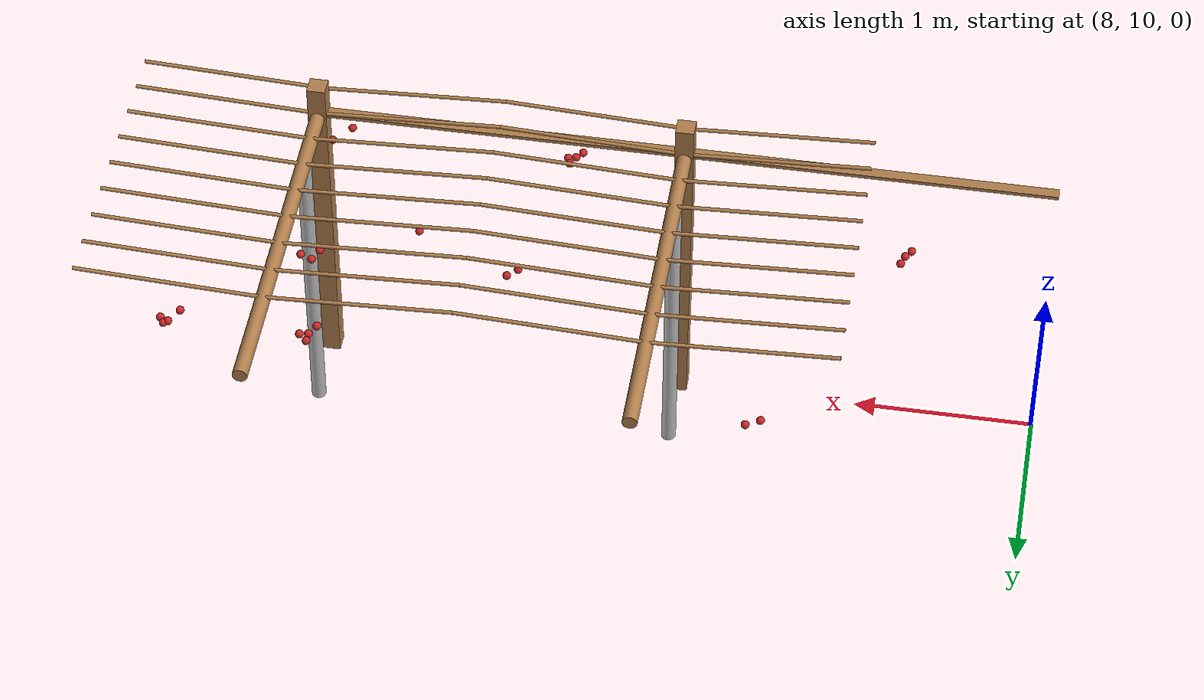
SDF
<sdf version="1.4">
 <model name="pergola">
  <include><name>post_60</name><pose>10.0 10.0 0 0 0 0</pose><uri>model://post</uri></include>
  <include><name>post_71</name><pose>12.0 10.0 0 0 0 0</pose><uri>model://post</uri></include>
  <link name="beam_49">
   <pose>9.0 10.0 1.81 0 0 0</pose>
   <collision name="collision"><geometry><box><size>2.0 0.06 0.02</size></box></geometry></collision>
   <visual name="visual">
    <geometry><box><size>2.0 0.06 0.02</size></box></geometry>
    <material><script><name>Gazebo/Wood</name></script></material>
   </visual>
   <inertial>
    <mass>5</mass>
    <inertia>
     <ixx>0.0016666666666666668</ixx>
     <ixy>0.0</ixy>
     <ixz>0.0</ixz>
     <iyy>1.6681666666666664</iyy>
     <iyz>0.0</iyz>
     <izz>1.6668333333333332</izz>
    </inertia>
   </inertial>
  </link>
  <link name="beam_60">
   <pose>11.0 10.0 1.81 0 0 0</pose>
   <collision name="collision"><geometry><box><size>2.0 0.06 0.02</size></box></geometry></collision>
   <visual name="visual">
    <geometry><box><size>2.0 0.06 0.02</size></box></geometry>
    <material><script><name>Gazebo/Wood</name></script></material>
   </visual>
   <inertial>
    <mass>5</mass>
    <inertia>
     <ixx>0.0016666666666666668</ixx>
     <ixy>0.0</ixy>
     <ixz>0.0</ixz>
     <iyy>1.6681666666666664</iyy>
     <iyz>0.0</iyz>
     <izz>1.6668333333333332</izz>
    </inertia>
   </inertial>
  </link>
  <include><name>tree_55</name><pose>10.0 10.4 0 0 0 0</pose><uri>model://tree_trunk</uri></include>
  <include><name>tree_65</name><pose>12.0 10.4 0 0 0 0</pose><uri>model://tree_trunk</uri></include>
  <link name="baseBranch_55">
   <pose>10.0 11.0 1.8 1.5707963267948966 0 0</pose>
   <collision name="collision">
    <geometry><cylinder><radius>0.04</radius><length>1.94</length></cylinder></geometry>
   </collision>
   <visual name="visual">
    <geometry><cylinder><radius>0.04</radius><length>1.94</length></cylinder></geometry>
    <material><script><name>Gazebo/WoodFloor</name></script></material>
   </visual>
   <inertial>
    <mass>10</mass>
    <inertia>
     <ixx>3.140333333333333</ixx>
     <ixy>0.0</ixy>
     <ixz>0.0</ixz>
     <iyy>3.140333333333333</iyy>
     <iyz>0.0</iyz>
     <izz>0.008</izz>
    </inertia>
   </inertial>
  </link>
  <link name="baseBranch_65">
   <pose>12.0 11.0 1.8 1.5707963267948966 0 0</pose>
   <collision name="collision">
    <geometry><cylinder><radius>0.04</radius><length>1.94</length></cylinder></geometry>
   </collision>
   <visual name="visual">
    <geometry><cylinder><radius>0.04</radius><length>1.94</length></cylinder></geometry>
    <material><script><name>Gazebo/WoodFloor</name></script></material>
   </visual>
   <inertial>
    <mass>10</mass>
    <inertia>
     <ixx>3.140333333333333</ixx>
     <ixy>0.0</ixy>
     <ixz>0.0</ixz>
     <iyy>3.140333333333333</iyy>
     <iyz>0.0</iyz>
     <izz>0.008</izz>
    </inertia>
   </inertial>
  </link>
  <link name="vine_899">
   <pose>9.5 9.83 1.85 0 -1.5208379310729538 0</pose>
   <collision name="collision">
    <geometry><cylinder><radius>0.01</radius><length>1.0012492197250393</length></cylinder></geometry>
   </collision>
   <visual name="visual">
    <geometry><cylinder><radius>0.01</radius><length>1.0012492197250393</length></cylinder></geometry>
    <material><script><name>Gazebo/WoodFloor</name></script></material>
   </visual>
   <inertial>
    <mass>5</mass>
    <inertia>
     <ixx>0.41783333333333345</ixx>
     <ixy>0.0</ixy>
     <ixz>0.0</ixz>
     <iyy>0.41783333333333345</iyy>
     <iyz>0.0</iyz>
     <izz>0.00025</izz>
    </inertia>
   </inertial>
  </link>
  <link name="vine_901">
   <pose>9.5 10.03 1.85 0 -1.5208379310729538 0</pose>
   <collision name="collision">
    <geometry><cylinder><radius>0.01</radius><length>1.0012492197250393</length></cylinder></geometry>
   </collision>
   <visual name="visual">
    <geometry><cylinder><radius>0.01</radius><length>1.0012492197250393</length></cylinder></geometry>
    <material><script><name>Gazebo/WoodFloor</name></script></material>
   </visual>
   <inertial>
    <mass>5</mass>
    <inertia>
     <ixx>0.41783333333333345</ixx>
     <ixy>0.0</ixy>
     <ixz>0.0</ixz>
     <iyy>0.41783333333333345</iyy>
     <iyz>0.0</iyz>
     <izz>0.00025</izz>
    </inertia>
   </inertial>
  </link>
  <link name="vine_903">
   <pose>9.5 10.23 1.85 0 -1.5208379310729538 0</pose>
   <collision name="collision">
    <geometry><cylinder><radius>0.01</radius><length>1.0012492197250393</length></cylinder></geometry>
   </collision>
   <visual name="visual">
    <geometry><cylinder><radius>0.01</radius><length>1.0012492197250393</length></cylinder></geometry>
    <material><script><name>Gazebo/WoodFloor</name></script></material>
   </visual>
   <inertial>
    <mass>5</mass>
    <inertia>
     <ixx>0.41783333333333345</ixx>
     <ixy>0.0</ixy>
     <ixz>0.0</ixz>
     <iyy>0.41783333333333345</iyy>
     <iyz>0.0</iyz>
     <izz>0.00025</izz>
    </inertia>
   </inertial>
  </link>
  <link name="vine_905">
   <pose>9.5 10.43 1.85 0 -1.5208379310729538 0</pose>
   <collision name="collision">
    <geometry><cylinder><radius>0.01</radius><length>1.0012492197250393</length></cylinder></geometry>
   </collision>
   <visual name="visual">
    <geometry><cylinder><radius>0.01</radius><length>1.0012492197250393</length></cylinder></geometry>
    <material><script><name>Gazebo/WoodFloor</name></script></material>
   </visual>
   <inertial>
    <mass>5</mass>
    <inertia>
     <ixx>0.41783333333333345</ixx>
     <ixy>0.0</ixy>
     <ixz>0.0</ixz>
     <iyy>0.41783333333333345</iyy>
     <iyz>0.0</iyz>
     <izz>0.00025</izz>
    </inertia>
   </inertial>
  </link>
  <link name="vine_907">
   <pose>9.5 10.63 1.85 0 -1.5208379310729538 0</pose>
   <collision name="collision">
    <geometry><cylinder><radius>0.01</radius><length>1.0012492197250393</length></cylinder></geometry>
   </collision>
   <visual name="visual">
    <geometry><cylinder><radius>0.01</radius><length>1.0012492197250393</length></cylinder></geometry>
    <material><script><name>Gazebo/WoodFloor</name></script></material>
   </visual>
   <inertial>
    <mass>5</mass>
    <inertia>
     <ixx>0.41783333333333345</ixx>
     <ixy>0.0</ixy>
     <ixz>0.0</ixz>
     <iyy>0.41783333333333345</iyy>
     <iyz>0.0</iyz>
     <izz>0.00025</izz>
    </inertia>
   </inertial>
  </link>
  <link name="vine_909">
   <pose>9.5 10.83 1.85 0 -1.5208379310729538 0</pose>
   <collision name="collision">
    <geometry><cylinder><radius>0.01</radius><length>1.0012492197250393</length></cylinder></geometry>
   </collision>
   <visual name="visual">
    <geometry><cylinder><radius>0.01</radius><length>1.0012492197250393</length></cylinder></geometry>
    <material><script><name>Gazebo/WoodFloor</name></script></material>
   </visual>
   <inertial>
    <mass>5</mass>
    <inertia>
     <ixx>0.41783333333333345</ixx>
     <ixy>0.0</ixy>
     <ixz>0.0</ixz>
     <iyy>0.41783333333333345</iyy>
     <iyz>0.0</iyz>
     <izz>0.00025</izz>
    </inertia>
   </inertial>
  </link>
  <link name="vine_911">
   <pose>9.5 11.03 1.85 0 -1.5208379310729538 0</pose>
   <collision name="collision">
    <geometry><cylinder><radius>0.01</radius><length>1.0012492197250393</length></cylinder></geometry>
   </collision>
   <visual name="visual">
    <geometry><cylinder><radius>0.01</radius><length>1.0012492197250393</length></cylinder></geometry>
    <material><script><name>Gazebo/WoodFloor</name></script></material>
   </visual>
   <inertial>
    <mass>5</mass>
    <inertia>
     <ixx>0.41783333333333345</ixx>
     <ixy>0.0</ixy>
     <ixz>0.0</ixz>
     <iyy>0.41783333333333345</iyy>
     <iyz>0.0</iyz>
     <izz>0.00025</izz>
    </inertia>
   </inertial>
  </link>
  <link name="vine_913">
   <pose>9.5 11.23 1.85 0 -1.5208379310729538 0</pose>
   <collision name="collision">
    <geometry><cylinder><radius>0.01</radius><length>1.0012492197250393</length></cylinder></geometry>
   </collision>
   <visual name="visual">
    <geometry><cylinder><radius>0.01</radius><length>1.0012492197250393</length></cylinder></geometry>
    <material><script><name>Gazebo/WoodFloor</name></script></material>
   </visual>
   <inertial>
    <mass>5</mass>
    <inertia>
     <ixx>0.41783333333333345</ixx>
     <ixy>0.0</ixy>
     <ixz>0.0</ixz>
     <iyy>0.41783333333333345</iyy>
     <iyz>0.0</iyz>
     <izz>0.00025</izz>
    </inertia>
   </inertial>
  </link>
  <link name="vine_915">
   <pose>9.5 11.43 1.85 0 -1.5208379310729538 0</pose>
   <collision name="collision">
    <geometry><cylinder><radius>0.01</radius><length>1.0012492197250393</length></cylinder></geometry>
   </collision>
   <visual name="visual">
    <geometry><cylinder><radius>0.01</radius><length>1.0012492197250393</length></cylinder></geometry>
    <material><script><name>Gazebo/WoodFloor</name></script></material>
   </visual>
   <inertial>
    <mass>5</mass>
    <inertia>
     <ixx>0.41783333333333345</ixx>
     <ixy>0.0</ixy>
     <ixz>0.0</ixz>
     <iyy>0.41783333333333345</iyy>
     <iyz>0.0</iyz>
     <izz>0.00025</izz>
    </inertia>
   </inertial>
  </link>
  <link name="vine_1098">
   <pose>10.5 9.83 1.85 0 1.5208379310729538 0</pose>
   <collision name="collision">
    <geometry><cylinder><radius>0.01</radius><length>1.0012492197250393</length></cylinder></geometry>
   </collision>
   <visual name="visual">
    <geometry><cylinder><radius>0.01</radius><length>1.0012492197250393</length></cylinder></geometry>
    <material><script><name>Gazebo/WoodFloor</name></script></material>
   </visual>
   <inertial>
    <mass>5</mass>
    <inertia>
     <ixx>0.41783333333333345</ixx>
     <ixy>0.0</ixy>
     <ixz>0.0</ixz>
     <iyy>0.41783333333333345</iyy>
     <iyz>0.0</iyz>
     <izz>0.00025</izz>
    </inertia>
   </inertial>
  </link>
  <link name="vine_1099">
   <pose>11.5 9.83 1.85 0 -1.5208379310729538 0</pose>
   <collision name="collision">
    <geometry><cylinder><radius>0.01</radius><length>1.0012492197250393</length></cylinder></geometry>
   </collision>
   <visual name="visual">
    <geometry><cylinder><radius>0.01</radius><length>1.0012492197250393</length></cylinder></geometry>
    <material><script><name>Gazebo/WoodFloor</name></script></material>
   </visual>
   <inertial>
    <mass>5</mass>
    <inertia>
     <ixx>0.41783333333333345</ixx>
     <ixy>0.0</ixy>
     <ixz>0.0</ixz>
     <iyy>0.41783333333333345</iyy>
     <iyz>0.0</iyz>
     <izz>0.00025</izz>
    </inertia>
   </inertial>
  </link>
  <link name="vine_1100">
   <pose>10.5 10.03 1.85 0 1.5208379310729538 0</pose>
   <collision name="collision">
    <geometry><cylinder><radius>0.01</radius><length>1.0012492197250393</length></cylinder></geometry>
   </collision>
   <visual name="visual">
    <geometry><cylinder><radius>0.01</radius><length>1.0012492197250393</length></cylinder></geometry>
    <material><script><name>Gazebo/WoodFloor</name></script></material>
   </visual>
   <inertial>
    <mass>5</mass>
    <inertia>
     <ixx>0.41783333333333345</ixx>
     <ixy>0.0</ixy>
     <ixz>0.0</ixz>
     <iyy>0.41783333333333345</iyy>
     <iyz>0.0</iyz>
     <izz>0.00025</izz>
    </inertia>
   </inertial>
  </link>
  <link name="vine_1101">
   <pose>11.5 10.03 1.85 0 -1.5208379310729538 0</pose>
   <collision name="collision">
    <geometry><cylinder><radius>0.01</radius><length>1.0012492197250393</length></cylinder></geometry>
   </collision>
   <visual name="visual">
    <geometry><cylinder><radius>0.01</radius><length>1.0012492197250393</length></cylinder></geometry>
    <material><script><name>Gazebo/WoodFloor</name></script></material>
   </visual>
   <inertial>
    <mass>5</mass>
    <inertia>
     <ixx>0.41783333333333345</ixx>
     <ixy>0.0</ixy>
     <ixz>0.0</ixz>
     <iyy>0.41783333333333345</iyy>
     <iyz>0.0</iyz>
     <izz>0.00025</izz>
    </inertia>
   </inertial>
  </link>
  <link name="vine_1102">
   <pose>10.5 10.23 1.85 0 1.5208379310729538 0</pose>
   <collision name="collision">
    <geometry><cylinder><radius>0.01</radius><length>1.0012492197250393</length></cylinder></geometry>
   </collision>
   <visual name="visual">
    <geometry><cylinder><radius>0.01</radius><length>1.0012492197250393</length></cylinder></geometry>
    <material><script><name>Gazebo/WoodFloor</name></script></material>
   </visual>
   <inertial>
    <mass>5</mass>
    <inertia>
     <ixx>0.41783333333333345</ixx>
     <ixy>0.0</ixy>
     <ixz>0.0</ixz>
     <iyy>0.41783333333333345</iyy>
     <iyz>0.0</iyz>
     <izz>0.00025</izz>
    </inertia>
   </inertial>
  </link>
  <link name="vine_1103">
   <pose>11.5 10.23 1.85 0 -1.5208379310729538 0</pose>
   <collision name="collision">
    <geometry><cylinder><radius>0.01</radius><length>1.0012492197250393</length></cylinder></geometry>
   </collision>
   <visual name="visual">
    <geometry><cylinder><radius>0.01</radius><length>1.0012492197250393</length></cylinder></geometry>
    <material><script><name>Gazebo/WoodFloor</name></script></material>
   </visual>
   <inertial>
    <mass>5</mass>
    <inertia>
     <ixx>0.41783333333333345</ixx>
     <ixy>0.0</ixy>
     <ixz>0.0</ixz>
     <iyy>0.41783333333333345</iyy>
     <iyz>0.0</iyz>
     <izz>0.00025</izz>
    </inertia>
   </inertial>
  </link>
  <link name="vine_1104">
   <pose>10.5 10.43 1.85 0 1.5208379310729538 0</pose>
   <collision name="collision">
    <geometry><cylinder><radius>0.01</radius><length>1.0012492197250393</length></cylinder></geometry>
   </collision>
   <visual name="visual">
    <geometry><cylinder><radius>0.01</radius><length>1.0012492197250393</length></cylinder></geometry>
    <material><script><name>Gazebo/WoodFloor</name></script></material>
   </visual>
   <inertial>
    <mass>5</mass>
    <inertia>
     <ixx>0.41783333333333345</ixx>
     <ixy>0.0</ixy>
     <ixz>0.0</ixz>
     <iyy>0.41783333333333345</iyy>
     <iyz>0.0</iyz>
     <izz>0.00025</izz>
    </inertia>
   </inertial>
  </link>
  <link name="vine_1105">
   <pose>11.5 10.43 1.85 0 -1.5208379310729538 0</pose>
   <collision name="collision">
    <geometry><cylinder><radius>0.01</radius><length>1.0012492197250393</length></cylinder></geometry>
   </collision>
   <visual name="visual">
    <geometry><cylinder><radius>0.01</radius><length>1.0012492197250393</length></cylinder></geometry>
    <material><script><name>Gazebo/WoodFloor</name></script></material>
   </visual>
   <inertial>
    <mass>5</mass>
    <inertia>
     <ixx>0.41783333333333345</ixx>
     <ixy>0.0</ixy>
     <ixz>0.0</ixz>
     <iyy>0.41783333333333345</iyy>
     <iyz>0.0</iyz>
     <izz>0.00025</izz>
    </inertia>
   </inertial>
  </link>
  <link name="vine_1106">
   <pose>10.5 10.63 1.85 0 1.5208379310729538 0</pose>
   <collision name="collision">
    <geometry><cylinder><radius>0.01</radius><length>1.0012492197250393</length></cylinder></geometry>
   </collision>
   <visual name="visual">
    <geometry><cylinder><radius>0.01</radius><length>1.0012492197250393</length></cylinder></geometry>
    <material><script><name>Gazebo/WoodFloor</name></script></material>
   </visual>
   <inertial>
    <mass>5</mass>
    <inertia>
     <ixx>0.41783333333333345</ixx>
     <ixy>0.0</ixy>
     <ixz>0.0</ixz>
     <iyy>0.41783333333333345</iyy>
     <iyz>0.0</iyz>
     <izz>0.00025</izz>
    </inertia>
   </inertial>
  </link>
  <link name="vine_1107">
   <pose>11.5 10.63 1.85 0 -1.5208379310729538 0</pose>
   <collision name="collision">
    <geometry><cylinder><radius>0.01</radius><length>1.0012492197250393</length></cylinder></geometry>
   </collision>
   <visual name="visual">
    <geometry><cylinder><radius>0.01</radius><length>1.0012492197250393</length></cylinder></geometry>
    <material><script><name>Gazebo/WoodFloor</name></script></material>
   </visual>
   <inertial>
    <mass>5</mass>
    <inertia>
     <ixx>0.41783333333333345</ixx>
     <ixy>0.0</ixy>
     <ixz>0.0</ixz>
     <iyy>0.41783333333333345</iyy>
     <iyz>0.0</iyz>
     <izz>0.00025</izz>
    </inertia>
   </inertial>
  </link>
  <link name="vine_1108">
   <pose>10.5 10.83 1.85 0 1.5208379310729538 0</pose>
   <collision name="collision">
    <geometry><cylinder><radius>0.01</radius><length>1.0012492197250393</length></cylinder></geometry>
   </collision>
   <visual name="visual">
    <geometry><cylinder><radius>0.01</radius><length>1.0012492197250393</length></cylinder></geometry>
    <material><script><name>Gazebo/WoodFloor</name></script></material>
   </visual>
   <inertial>
    <mass>5</mass>
    <inertia>
     <ixx>0.41783333333333345</ixx>
     <ixy>0.0</ixy>
     <ixz>0.0</ixz>
     <iyy>0.41783333333333345</iyy>
     <iyz>0.0</iyz>
     <izz>0.00025</izz>
    </inertia>
   </inertial>
  </link>
  <link name="vine_1109">
   <pose>11.5 10.83 1.85 0 -1.5208379310729538 0</pose>
   <collision name="collision">
    <geometry><cylinder><radius>0.01</radius><length>1.0012492197250393</length></cylinder></geometry>
   </collision>
   <visual name="visual">
    <geometry><cylinder><radius>0.01</radius><length>1.0012492197250393</length></cylinder></geometry>
    <material><script><name>Gazebo/WoodFloor</name></script></material>
   </visual>
   <inertial>
    <mass>5</mass>
    <inertia>
     <ixx>0.41783333333333345</ixx>
     <ixy>0.0</ixy>
     <ixz>0.0</ixz>
     <iyy>0.41783333333333345</iyy>
     <iyz>0.0</iyz>
     <izz>0.00025</izz>
    </inertia>
   </inertial>
  </link>
  <link name="vine_1110">
   <pose>10.5 11.03 1.85 0 1.5208379310729538 0</pose>
   <collision name="collision">
    <geometry><cylinder><radius>0.01</radius><length>1.0012492197250393</length></cylinder></geometry>
   </collision>
   <visual name="visual">
    <geometry><cylinder><radius>0.01</radius><length>1.0012492197250393</length></cylinder></geometry>
    <material><script><name>Gazebo/WoodFloor</name></script></material>
   </visual>
   <inertial>
    <mass>5</mass>
    <inertia>
     <ixx>0.41783333333333345</ixx>
     <ixy>0.0</ixy>
     <ixz>0.0</ixz>
     <iyy>0.41783333333333345</iyy>
     <iyz>0.0</iyz>
     <izz>0.00025</izz>
    </inertia>
   </inertial>
  </link>
  <link name="vine_1111">
   <pose>11.5 11.03 1.85 0 -1.5208379310729538 0</pose>
   <collision name="collision">
    <geometry><cylinder><radius>0.01</radius><length>1.0012492197250393</length></cylinder></geometry>
   </collision>
   <visual name="visual">
    <geometry><cylinder><radius>0.01</radius><length>1.0012492197250393</length></cylinder></geometry>
    <material><script><name>Gazebo/WoodFloor</name></script></material>
   </visual>
   <inertial>
    <mass>5</mass>
    <inertia>
     <ixx>0.41783333333333345</ixx>
     <ixy>0.0</ixy>
     <ixz>0.0</ixz>
     <iyy>0.41783333333333345</iyy>
     <iyz>0.0</iyz>
     <izz>0.00025</izz>
    </inertia>
   </inertial>
  </link>
  <link name="vine_1112">
   <pose>10.5 11.23 1.85 0 1.5208379310729538 0</pose>
   <collision name="collision">
    <geometry><cylinder><radius>0.01</radius><length>1.0012492197250393</length></cylinder></geometry>
   </collision>
   <visual name="visual">
    <geometry><cylinder><radius>0.01</radius><length>1.0012492197250393</length></cylinder></geometry>
    <material><script><name>Gazebo/WoodFloor</name></script></material>
   </visual>
   <inertial>
    <mass>5</mass>
    <inertia>
     <ixx>0.41783333333333345</ixx>
     <ixy>0.0</ixy>
     <ixz>0.0</ixz>
     <iyy>0.41783333333333345</iyy>
     <iyz>0.0</iyz>
     <izz>0.00025</izz>
    </inertia>
   </inertial>
  </link>
  <link name="vine_1113">
   <pose>11.5 11.23 1.85 0 -1.5208379310729538 0</pose>
   <collision name="collision">
    <geometry><cylinder><radius>0.01</radius><length>1.0012492197250393</length></cylinder></geometry>
   </collision>
   <visual name="visual">
    <geometry><cylinder><radius>0.01</radius><length>1.0012492197250393</length></cylinder></geometry>
    <material><script><name>Gazebo/WoodFloor</name></script></material>
   </visual>
   <inertial>
    <mass>5</mass>
    <inertia>
     <ixx>0.41783333333333345</ixx>
     <ixy>0.0</ixy>
     <ixz>0.0</ixz>
     <iyy>0.41783333333333345</iyy>
     <iyz>0.0</iyz>
     <izz>0.00025</izz>
    </inertia>
   </inertial>
  </link>
  <link name="vine_1114">
   <pose>10.5 11.43 1.85 0 1.5208379310729538 0</pose>
   <collision name="collision">
    <geometry><cylinder><radius>0.01</radius><length>1.0012492197250393</length></cylinder></geometry>
   </collision>
   <visual name="visual">
    <geometry><cylinder><radius>0.01</radius><length>1.0012492197250393</length></cylinder></geometry>
    <material><script><name>Gazebo/WoodFloor</name></script></material>
   </visual>
   <inertial>
    <mass>5</mass>
    <inertia>
     <ixx>0.41783333333333345</ixx>
     <ixy>0.0</ixy>
     <ixz>0.0</ixz>
     <iyy>0.41783333333333345</iyy>
     <iyz>0.0</iyz>
     <izz>0.00025</izz>
    </inertia>
   </inertial>
  </link>
  <link name="vine_1115">
   <pose>11.5 11.43 1.85 0 -1.5208379310729538 0</pose>
   <collision name="collision">
    <geometry><cylinder><radius>0.01</radius><length>1.0012492197250393</length></cylinder></geometry>
   </collision>
   <visual name="visual">
    <geometry><cylinder><radius>0.01</radius><length>1.0012492197250393</length></cylinder></geometry>
    <material><script><name>Gazebo/WoodFloor</name></script></material>
   </visual>
   <inertial>
    <mass>5</mass>
    <inertia>
     <ixx>0.41783333333333345</ixx>
     <ixy>0.0</ixy>
     <ixz>0.0</ixz>
     <iyy>0.41783333333333345</iyy>
     <iyz>0.0</iyz>
     <izz>0.00025</izz>
    </inertia>
   </inertial>
  </link>
  <link name="vine_1298">
   <pose>12.5 9.83 1.85 0 1.5208379310729538 0</pose>
   <collision name="collision">
    <geometry><cylinder><radius>0.01</radius><length>1.0012492197250393</length></cylinder></geometry>
   </collision>
   <visual name="visual">
    <geometry><cylinder><radius>0.01</radius><length>1.0012492197250393</length></cylinder></geometry>
    <material><script><name>Gazebo/WoodFloor</name></script></material>
   </visual>
   <inertial>
    <mass>5</mass>
    <inertia>
     <ixx>0.41783333333333345</ixx>
     <ixy>0.0</ixy>
     <ixz>0.0</ixz>
     <iyy>0.41783333333333345</iyy>
     <iyz>0.0</iyz>
     <izz>0.00025</izz>
    </inertia>
   </inertial>
  </link>
  <link name="vine_1300">
   <pose>12.5 10.03 1.85 0 1.5208379310729538 0</pose>
   <collision name="collision">
    <geometry><cylinder><radius>0.01</radius><length>1.0012492197250393</length></cylinder></geometry>
   </collision>
   <visual name="visual">
    <geometry><cylinder><radius>0.01</radius><length>1.0012492197250393</length></cylinder></geometry>
    <material><script><name>Gazebo/WoodFloor</name></script></material>
   </visual>
   <inertial>
    <mass>5</mass>
    <inertia>
     <ixx>0.41783333333333345</ixx>
     <ixy>0.0</ixy>
     <ixz>0.0</ixz>
     <iyy>0.41783333333333345</iyy>
     <iyz>0.0</iyz>
     <izz>0.00025</izz>
    </inertia>
   </inertial>
  </link>
  <link name="vine_1302">
   <pose>12.5 10.23 1.85 0 1.5208379310729538 0</pose>
   <collision name="collision">
    <geometry><cylinder><radius>0.01</radius><length>1.0012492197250393</length></cylinder></geometry>
   </collision>
   <visual name="visual">
    <geometry><cylinder><radius>0.01</radius><length>1.0012492197250393</length></cylinder></geometry>
    <material><script><name>Gazebo/WoodFloor</name></script></material>
   </visual>
   <inertial>
    <mass>5</mass>
    <inertia>
     <ixx>0.41783333333333345</ixx>
     <ixy>0.0</ixy>
     <ixz>0.0</ixz>
     <iyy>0.41783333333333345</iyy>
     <iyz>0.0</iyz>
     <izz>0.00025</izz>
    </inertia>
   </inertial>
  </link>
  <link name="vine_1304">
   <pose>12.5 10.43 1.85 0 1.5208379310729538 0</pose>
   <collision name="collision">
    <geometry><cylinder><radius>0.01</radius><length>1.0012492197250393</length></cylinder></geometry>
   </collision>
   <visual name="visual">
    <geometry><cylinder><radius>0.01</radius><length>1.0012492197250393</length></cylinder></geometry>
    <material><script><name>Gazebo/WoodFloor</name></script></material>
   </visual>
   <inertial>
    <mass>5</mass>
    <inertia>
     <ixx>0.41783333333333345</ixx>
     <ixy>0.0</ixy>
     <ixz>0.0</ixz>
     <iyy>0.41783333333333345</iyy>
     <iyz>0.0</iyz>
     <izz>0.00025</izz>
    </inertia>
   </inertial>
  </link>
  <link name="vine_1306">
   <pose>12.5 10.63 1.85 0 1.5208379310729538 0</pose>
   <collision name="collision">
    <geometry><cylinder><radius>0.01</radius><length>1.0012492197250393</length></cylinder></geometry>
   </collision>
   <visual name="visual">
    <geometry><cylinder><radius>0.01</radius><length>1.0012492197250393</length></cylinder></geometry>
    <material><script><name>Gazebo/WoodFloor</name></script></material>
   </visual>
   <inertial>
    <mass>5</mass>
    <inertia>
     <ixx>0.41783333333333345</ixx>
     <ixy>0.0</ixy>
     <ixz>0.0</ixz>
     <iyy>0.41783333333333345</iyy>
     <iyz>0.0</iyz>
     <izz>0.00025</izz>
    </inertia>
   </inertial>
  </link>
  <link name="vine_1308">
   <pose>12.5 10.83 1.85 0 1.5208379310729538 0</pose>
   <collision name="collision">
    <geometry><cylinder><radius>0.01</radius><length>1.0012492197250393</length></cylinder></geometry>
   </collision>
   <visual name="visual">
    <geometry><cylinder><radius>0.01</radius><length>1.0012492197250393</length></cylinder></geometry>
    <material><script><name>Gazebo/WoodFloor</name></script></material>
   </visual>
   <inertial>
    <mass>5</mass>
    <inertia>
     <ixx>0.41783333333333345</ixx>
     <ixy>0.0</ixy>
     <ixz>0.0</ixz>
     <iyy>0.41783333333333345</iyy>
     <iyz>0.0</iyz>
     <izz>0.00025</izz>
    </inertia>
   </inertial>
  </link>
  <link name="vine_1310">
   <pose>12.5 11.03 1.85 0 1.5208379310729538 0</pose>
   <collision name="collision">
    <geometry><cylinder><radius>0.01</radius><length>1.0012492197250393</length></cylinder></geometry>
   </collision>
   <visual name="visual">
    <geometry><cylinder><radius>0.01</radius><length>1.0012492197250393</length></cylinder></geometry>
    <material><script><name>Gazebo/WoodFloor</name></script></material>
   </visual>
   <inertial>
    <mass>5</mass>
    <inertia>
     <ixx>0.41783333333333345</ixx>
     <ixy>0.0</ixy>
     <ixz>0.0</ixz>
     <iyy>0.41783333333333345</iyy>
     <iyz>0.0</iyz>
     <izz>0.00025</izz>
    </inertia>
   </inertial>
  </link>
  <link name="vine_1312">
   <pose>12.5 11.23 1.85 0 1.5208379310729538 0</pose>
   <collision name="collision">
    <geometry><cylinder><radius>0.01</radius><length>1.0012492197250393</length></cylinder></geometry>
   </collision>
   <visual name="visual">
    <geometry><cylinder><radius>0.01</radius><length>1.0012492197250393</length></cylinder></geometry>
    <material><script><name>Gazebo/WoodFloor</name></script></material>
   </visual>
   <inertial>
    <mass>5</mass>
    <inertia>
     <ixx>0.41783333333333345</ixx>
     <ixy>0.0</ixy>
     <ixz>0.0</ixz>
     <iyy>0.41783333333333345</iyy>
     <iyz>0.0</iyz>
     <izz>0.00025</izz>
    </inertia>
   </inertial>
  </link>
  <link name="vine_1314">
   <pose>12.5 11.43 1.85 0 1.5208379310729538 0</pose>
   <collision name="collision">
    <geometry><cylinder><radius>0.01</radius><length>1.0012492197250393</length></cylinder></geometry>
   </collision>
   <visual name="visual">
    <geometry><cylinder><radius>0.01</radius><length>1.0012492197250393</length></cylinder></geometry>
    <material><script><name>Gazebo/WoodFloor</name></script></material>
   </visual>
   <inertial>
    <mass>5</mass>
    <inertia>
     <ixx>0.41783333333333345</ixx>
     <ixy>0.0</ixy>
     <ixz>0.0</ixz>
     <iyy>0.41783333333333345</iyy>
     <iyz>0.0</iyz>
     <izz>0.00025</izz>
    </inertia>
   </inertial>
  </link>
  <link name="fruit_10">
   <pose>8.729142464583658 10.500229779411352 1.7630535226261344 0 0 0</pose>
   <collision name="fruit_collision_10"><geometry><sphere><radius>0.022</radius></sphere></geometry></collision>
   <visual name="visual">
    <geometry><sphere><radius>0.022</radius></sphere></geometry>
    <material><script><name>Gazebo/Red</name></script></material>
   </visual>
   <inertial>
    <mass>0.05</mass>
    <inertia>
     <ixx>9.679999999999999e-06</ixx>
     <ixy>0.0</ixy>
     <ixz>0.0</ixz>
     <iyy>9.679999999999999e-06</iyy>
     <iyz>0.0</iyz>
     <izz>9.679999999999999e-06</izz>
    </inertia>
   </inertial>
   <sensor name="fruit_contact_10" type="contact">
    <contact><collision>fruit_collision_10</collision></contact>
   </sensor>
  </link>
  <link name="fruit_24">
   <pose>10.753553525217365 10.89398294198726 1.6928819000971629 0 0 0</pose>
   <collision name="fruit_collision_24"><geometry><sphere><radius>0.022</radius></sphere></geometry></collision>
   <visual name="visual">
    <geometry><sphere><radius>0.022</radius></sphere></geometry>
    <material><script><name>Gazebo/Red</name></script></material>
   </visual>
   <inertial>
    <mass>0.05</mass>
    <inertia>
     <ixx>9.679999999999999e-06</ixx>
     <ixy>0.0</ixy>
     <ixz>0.0</ixz>
     <iyy>9.679999999999999e-06</iyy>
     <iyz>0.0</iyz>
     <izz>9.679999999999999e-06</izz>
    </inertia>
   </inertial>
   <sensor name="fruit_contact_24" type="contact">
    <contact><collision>fruit_collision_24</collision></contact>
   </sensor>
  </link>
  <link name="fruit_75">
   <pose>12.419571371573035 11.512841064319536 1.741533312486118 0 0 0</pose>
   <collision name="fruit_collision_75"><geometry><sphere><radius>0.022</radius></sphere></geometry></collision>
   <visual name="visual">
    <geometry><sphere><radius>0.022</radius></sphere></geometry>
    <material><script><name>Gazebo/Red</name></script></material>
   </visual>
   <inertial>
    <mass>0.05</mass>
    <inertia>
     <ixx>9.679999999999999e-06</ixx>
     <ixy>0.0</ixy>
     <ixz>0.0</ixz>
     <iyy>9.679999999999999e-06</iyy>
     <iyz>0.0</iyz>
     <izz>9.679999999999999e-06</izz>
    </inertia>
   </inertial>
   <sensor name="fruit_contact_75" type="contact">
    <contact><collision>fruit_collision_75</collision></contact>
   </sensor>
  </link>
  <link name="fruit_127">
   <pose>10.569449435386023 9.89202783084765 1.6180405892810377 0 0 0</pose>
   <collision name="fruit_collision_127"><geometry><sphere><radius>0.022</radius></sphere></geometry></collision>
   <visual name="visual">
    <geometry><sphere><radius>0.022</radius></sphere></geometry>
    <material><script><name>Gazebo/Red</name></script></material>
   </visual>
   <inertial>
    <mass>0.05</mass>
    <inertia>
     <ixx>9.679999999999999e-06</ixx>
     <ixy>0.0</ixy>
     <ixz>0.0</ixz>
     <iyy>9.679999999999999e-06</iyy>
     <iyz>0.0</iyz>
     <izz>9.679999999999999e-06</izz>
    </inertia>
   </inertial>
   <sensor name="fruit_contact_127" type="contact">
    <contact><collision>fruit_collision_127</collision></contact>
   </sensor>
  </link>
  <link name="fruit_199">
   <pose>11.826108738499142 9.965334144803345 1.6808626080578146 0 0 0</pose>
   <collision name="fruit_collision_199"><geometry><sphere><radius>0.022</radius></sphere></geometry></collision>
   <visual name="visual">
    <geometry><sphere><radius>0.022</radius></sphere></geometry>
    <material><script><name>Gazebo/Red</name></script></material>
   </visual>
   <inertial>
    <mass>0.05</mass>
    <inertia>
     <ixx>9.679999999999999e-06</ixx>
     <ixy>0.0</ixy>
     <ixz>0.0</ixz>
     <iyy>9.679999999999999e-06</iyy>
     <iyz>0.0</iyz>
     <izz>9.679999999999999e-06</izz>
    </inertia>
   </inertial>
   <sensor name="fruit_contact_199" type="contact">
    <contact><collision>fruit_collision_199</collision></contact>
   </sensor>
  </link>
  <link name="fruit_240">
   <pose>11.837372824080777 10.808025306506792 1.576483519939332 0 0 0</pose>
   <collision name="fruit_collision_240"><geometry><sphere><radius>0.022</radius></sphere></geometry></collision>
   <visual name="visual">
    <geometry><sphere><radius>0.022</radius></sphere></geometry>
    <material><script><name>Gazebo/Red</name></script></material>
   </visual>
   <inertial>
    <mass>0.05</mass>
    <inertia>
     <ixx>9.679999999999999e-06</ixx>
     <ixy>0.0</ixy>
     <ixz>0.0</ixz>
     <iyy>9.679999999999999e-06</iyy>
     <iyz>0.0</iyz>
     <izz>9.679999999999999e-06</izz>
    </inertia>
   </inertial>
   <sensor name="fruit_contact_240" type="contact">
    <contact><collision>fruit_collision_240</collision></contact>
   </sensor>
  </link>
  <link name="fruit_248">
   <pose>11.713897375709372 11.449624775068907 1.6771194578121205 0 0 0</pose>
   <collision name="fruit_collision_248"><geometry><sphere><radius>0.022</radius></sphere></geometry></collision>
   <visual name="visual">
    <geometry><sphere><radius>0.022</radius></sphere></geometry>
    <material><script><name>Gazebo/Red</name></script></material>
   </visual>
   <inertial>
    <mass>0.05</mass>
    <inertia>
     <ixx>9.679999999999999e-06</ixx>
     <ixy>0.0</ixy>
     <ixz>0.0</ixz>
     <iyy>9.679999999999999e-06</iyy>
     <iyz>0.0</iyz>
     <izz>9.679999999999999e-06</izz>
    </inertia>
   </inertial>
   <sensor name="fruit_contact_248" type="contact">
    <contact><collision>fruit_collision_248</collision></contact>
   </sensor>
  </link>
  <link name="fruit_269">
   <pose>9.376746052955136 11.598429337234618 1.526169664233079 0 0 0</pose>
   <collision name="fruit_collision_269"><geometry><sphere><radius>0.022</radius></sphere></geometry></collision>
   <visual name="visual">
    <geometry><sphere><radius>0.022</radius></sphere></geometry>
    <material><script><name>Gazebo/Red</name></script></material>
   </visual>
   <inertial>
    <mass>0.05</mass>
    <inertia>
     <ixx>9.679999999999999e-06</ixx>
     <ixy>0.0</ixy>
     <ixz>0.0</ixz>
     <iyy>9.679999999999999e-06</iyy>
     <iyz>0.0</iyz>
     <izz>9.679999999999999e-06</izz>
    </inertia>
   </inertial>
   <sensor name="fruit_contact_269" type="contact">
    <contact><collision>fruit_collision_269</collision></contact>
   </sensor>
  </link>
  <link name="fruit_282">
   <pose>11.303082064449075 10.760166538375186 1.757653590646955 0 0 0</pose>
   <collision name="fruit_collision_282"><geometry><sphere><radius>0.022</radius></sphere></geometry></collision>
   <visual name="visual">
    <geometry><sphere><radius>0.022</radius></sphere></geometry>
    <material><script><name>Gazebo/Red</name></script></material>
   </visual>
   <inertial>
    <mass>0.05</mass>
    <inertia>
     <ixx>9.679999999999999e-06</ixx>
     <ixy>0.0</ixy>
     <ixz>0.0</ixz>
     <iyy>9.679999999999999e-06</iyy>
     <iyz>0.0</iyz>
     <izz>9.679999999999999e-06</izz>
    </inertia>
   </inertial>
   <sensor name="fruit_contact_282" type="contact">
    <contact><collision>fruit_collision_282</collision></contact>
   </sensor>
  </link>
  <link name="fruit_366">
   <pose>11.912849325573994 10.072287131939623 1.6784923639034448 0 0 0</pose>
   <collision name="fruit_collision_366"><geometry><sphere><radius>0.022</radius></sphere></geometry></collision>
   <visual name="visual">
    <geometry><sphere><radius>0.022</radius></sphere></geometry>
    <material><script><name>Gazebo/Red</name></script></material>
   </visual>
   <inertial>
    <mass>0.05</mass>
    <inertia>
     <ixx>9.679999999999999e-06</ixx>
     <ixy>0.0</ixy>
     <ixz>0.0</ixz>
     <iyy>9.679999999999999e-06</iyy>
     <iyz>0.0</iyz>
     <izz>9.679999999999999e-06</izz>
    </inertia>
   </inertial>
   <sensor name="fruit_contact_366" type="contact">
    <contact><collision>fruit_collision_366</collision></contact>
   </sensor>
  </link>
  <link name="fruit_380">
   <pose>10.602700014821988 9.926627217105695 1.6125952882447179 0 0 0</pose>
   <collision name="fruit_collision_380"><geometry><sphere><radius>0.022</radius></sphere></geometry></collision>
   <visual name="visual">
    <geometry><sphere><radius>0.022</radius></sphere></geometry>
    <material><script><name>Gazebo/Red</name></script></material>
   </visual>
   <inertial>
    <mass>0.05</mass>
    <inertia>
     <ixx>9.679999999999999e-06</ixx>
     <ixy>0.0</ixy>
     <ixz>0.0</ixz>
     <iyy>9.679999999999999e-06</iyy>
     <iyz>0.0</iyz>
     <izz>9.679999999999999e-06</izz>
    </inertia>
   </inertial>
   <sensor name="fruit_contact_380" type="contact">
    <contact><collision>fruit_collision_380</collision></contact>
   </sensor>
  </link>
  <link name="fruit_423">
   <pose>10.628680440307821 9.976697699314096 1.6099831359930539 0 0 0</pose>
   <collision name="fruit_collision_423"><geometry><sphere><radius>0.022</radius></sphere></geometry></collision>
   <visual name="visual">
    <geometry><sphere><radius>0.022</radius></sphere></geometry>
    <material><script><name>Gazebo/Red</name></script></material>
   </visual>
   <inertial>
    <mass>0.05</mass>
    <inertia>
     <ixx>9.679999999999999e-06</ixx>
     <ixy>0.0</ixy>
     <ixz>0.0</ixz>
     <iyy>9.679999999999999e-06</iyy>
     <iyz>0.0</iyz>
     <izz>9.679999999999999e-06</izz>
    </inertia>
   </inertial>
   <sensor name="fruit_contact_423" type="contact">
    <contact><collision>fruit_collision_423</collision></contact>
   </sensor>
  </link>
  <link name="fruit_468">
   <pose>11.867799080488751 10.87774145177357 1.571707006526698 0 0 0</pose>
   <collision name="fruit_collision_468"><geometry><sphere><radius>0.022</radius></sphere></geometry></collision>
   <visual name="visual">
    <geometry><sphere><radius>0.022</radius></sphere></geometry>
    <material><script><name>Gazebo/Red</name></script></material>
   </visual>
   <inertial>
    <mass>0.05</mass>
    <inertia>
     <ixx>9.679999999999999e-06</ixx>
     <ixy>0.0</ixy>
     <ixz>0.0</ixz>
     <iyy>9.679999999999999e-06</iyy>
     <iyz>0.0</iyz>
     <izz>9.679999999999999e-06</izz>
    </inertia>
   </inertial>
   <sensor name="fruit_contact_468" type="contact">
    <contact><collision>fruit_collision_468</collision></contact>
   </sensor>
  </link>
  <link name="fruit_469">
   <pose>8.758977340661668 10.537439114992827 1.7583418901086634 0 0 0</pose>
   <collision name="fruit_collision_469"><geometry><sphere><radius>0.022</radius></sphere></geometry></collision>
   <visual name="visual">
    <geometry><sphere><radius>0.022</radius></sphere></geometry>
    <material><script><name>Gazebo/Red</name></script></material>
   </visual>
   <inertial>
    <mass>0.05</mass>
    <inertia>
     <ixx>9.679999999999999e-06</ixx>
     <ixy>0.0</ixy>
     <ixz>0.0</ixz>
     <iyy>9.679999999999999e-06</iyy>
     <iyz>0.0</iyz>
     <izz>9.679999999999999e-06</izz>
    </inertia>
   </inertial>
   <sensor name="fruit_contact_469" type="contact">
    <contact><collision>fruit_collision_469</collision></contact>
   </sensor>
  </link>
  <link name="fruit_565">
   <pose>10.805670930686368 10.942085089354414 1.687368884206896 0 0 0</pose>
   <collision name="fruit_collision_565"><geometry><sphere><radius>0.022</radius></sphere></geometry></collision>
   <visual name="visual">
    <geometry><sphere><radius>0.022</radius></sphere></geometry>
    <material><script><name>Gazebo/Red</name></script></material>
   </visual>
   <inertial>
    <mass>0.05</mass>
    <inertia>
     <ixx>9.679999999999999e-06</ixx>
     <ixy>0.0</ixy>
     <ixz>0.0</ixz>
     <iyy>9.679999999999999e-06</iyy>
     <iyz>0.0</iyz>
     <izz>9.679999999999999e-06</izz>
    </inertia>
   </inertial>
   <sensor name="fruit_contact_565" type="contact">
    <contact><collision>fruit_collision_565</collision></contact>
   </sensor>
  </link>
  <link name="fruit_659">
   <pose>8.77684806788402 10.597741235916407 1.7628113681144806 0 0 0</pose>
   <collision name="fruit_collision_659"><geometry><sphere><radius>0.022</radius></sphere></geometry></collision>
   <visual name="visual">
    <geometry><sphere><radius>0.022</radius></sphere></geometry>
    <material><script><name>Gazebo/Red</name></script></material>
   </visual>
   <inertial>
    <mass>0.05</mass>
    <inertia>
     <ixx>9.679999999999999e-06</ixx>
     <ixy>0.0</ixy>
     <ixz>0.0</ixz>
     <iyy>9.679999999999999e-06</iyy>
     <iyz>0.0</iyz>
     <izz>9.679999999999999e-06</izz>
    </inertia>
   </inertial>
   <sensor name="fruit_contact_659" type="contact">
    <contact><collision>fruit_collision_659</collision></contact>
   </sensor>
  </link>
  <link name="fruit_661">
   <pose>11.747082105805193 11.508816877243177 1.675157307196497 0 0 0</pose>
   <collision name="fruit_collision_661"><geometry><sphere><radius>0.022</radius></sphere></geometry></collision>
   <visual name="visual">
    <geometry><sphere><radius>0.022</radius></sphere></geometry>
    <material><script><name>Gazebo/Red</name></script></material>
   </visual>
   <inertial>
    <mass>0.05</mass>
    <inertia>
     <ixx>9.679999999999999e-06</ixx>
     <ixy>0.0</ixy>
     <ixz>0.0</ixz>
     <iyy>9.679999999999999e-06</iyy>
     <iyz>0.0</iyz>
     <izz>9.679999999999999e-06</izz>
    </inertia>
   </inertial>
   <sensor name="fruit_contact_661" type="contact">
    <contact><collision>fruit_collision_661</collision></contact>
   </sensor>
  </link>
  <link name="fruit_726">
   <pose>11.79522419560246 11.506747390774763 1.6633710324014637 0 0 0</pose>
   <collision name="fruit_collision_726"><geometry><sphere><radius>0.022</radius></sphere></geometry></collision>
   <visual name="visual">
    <geometry><sphere><radius>0.022</radius></sphere></geometry>
    <material><script><name>Gazebo/Red</name></script></material>
   </visual>
   <inertial>
    <mass>0.05</mass>
    <inertia>
     <ixx>9.679999999999999e-06</ixx>
     <ixy>0.0</ixy>
     <ixz>0.0</ixz>
     <iyy>9.679999999999999e-06</iyy>
     <iyz>0.0</iyz>
     <izz>9.679999999999999e-06</izz>
    </inertia>
   </inertial>
   <sensor name="fruit_contact_726" type="contact">
    <contact><collision>fruit_collision_726</collision></contact>
   </sensor>
  </link>
  <link name="fruit_732">
   <pose>12.465999866896562 11.593213780888043 1.736298424424331 0 0 0</pose>
   <collision name="fruit_collision_732"><geometry><sphere><radius>0.022</radius></sphere></geometry></collision>
   <visual name="visual">
    <geometry><sphere><radius>0.022</radius></sphere></geometry>
    <material><script><name>Gazebo/Red</name></script></material>
   </visual>
   <inertial>
    <mass>0.05</mass>
    <inertia>
     <ixx>9.679999999999999e-06</ixx>
     <ixy>0.0</ixy>
     <ixz>0.0</ixz>
     <iyy>9.679999999999999e-06</iyy>
     <iyz>0.0</iyz>
     <izz>9.679999999999999e-06</izz>
    </inertia>
   </inertial>
   <sensor name="fruit_contact_732" type="contact">
    <contact><collision>fruit_collision_732</collision></contact>
   </sensor>
  </link>
  <link name="fruit_754">
   <pose>12.488083903490317 11.601931408818837 1.7289422305810773 0 0 0</pose>
   <collision name="fruit_collision_754"><geometry><sphere><radius>0.022</radius></sphere></geometry></collision>
   <visual name="visual">
    <geometry><sphere><radius>0.022</radius></sphere></geometry>
    <material><script><name>Gazebo/Red</name></script></material>
   </visual>
   <inertial>
    <mass>0.05</mass>
    <inertia>
     <ixx>9.679999999999999e-06</ixx>
     <ixy>0.0</ixy>
     <ixz>0.0</ixz>
     <iyy>9.679999999999999e-06</iyy>
     <iyz>0.0</iyz>
     <izz>9.679999999999999e-06</izz>
    </inertia>
   </inertial>
   <sensor name="fruit_contact_754" type="contact">
    <contact><collision>fruit_collision_754</collision></contact>
   </sensor>
  </link>
  <link name="fruit_787">
   <pose>12.513960599646449 11.561604316693366 1.7248367410501197 0 0 0</pose>
   <collision name="fruit_collision_787"><geometry><sphere><radius>0.022</radius></sphere></geometry></collision>
   <visual name="visual">
    <geometry><sphere><radius>0.022</radius></sphere></geometry>
    <material><script><name>Gazebo/Red</name></script></material>
   </visual>
   <inertial>
    <mass>0.05</mass>
    <inertia>
     <ixx>9.679999999999999e-06</ixx>
     <ixy>0.0</ixy>
     <ixz>0.0</ixz>
     <iyy>9.679999999999999e-06</iyy>
     <iyz>0.0</iyz>
     <izz>9.679999999999999e-06</izz>
    </inertia>
   </inertial>
   <sensor name="fruit_contact_787" type="contact">
    <contact><collision>fruit_collision_787</collision></contact>
   </sensor>
  </link>
  <link name="fruit_803">
   <pose>11.74983444522926 11.551607760628386 1.6666462112962879 0 0 0</pose>
   <collision name="fruit_collision_803"><geometry><sphere><radius>0.022</radius></sphere></geometry></collision>
   <visual name="visual">
    <geometry><sphere><radius>0.022</radius></sphere></geometry>
    <material><script><name>Gazebo/Red</name></script></material>
   </visual>
   <inertial>
    <mass>0.05</mass>
    <inertia>
     <ixx>9.679999999999999e-06</ixx>
     <ixy>0.0</ixy>
     <ixz>0.0</ixz>
     <iyy>9.679999999999999e-06</iyy>
     <iyz>0.0</iyz>
     <izz>9.679999999999999e-06</izz>
    </inertia>
   </inertial>
   <sensor name="fruit_contact_803" type="contact">
    <contact><collision>fruit_collision_803</collision></contact>
   </sensor>
  </link>
  <link name="fruit_808">
   <pose>10.643755274607047 9.940193204328631 1.6145249368489625 0 0 0</pose>
   <collision name="fruit_collision_808"><geometry><sphere><radius>0.022</radius></sphere></geometry></collision>
   <visual name="visual">
    <geometry><sphere><radius>0.022</radius></sphere></geometry>
    <material><script><name>Gazebo/Red</name></script></material>
   </visual>
   <inertial>
    <mass>0.05</mass>
    <inertia>
     <ixx>9.679999999999999e-06</ixx>
     <ixy>0.0</ixy>
     <ixz>0.0</ixz>
     <iyy>9.679999999999999e-06</iyy>
     <iyz>0.0</iyz>
     <izz>9.679999999999999e-06</izz>
    </inertia>
   </inertial>
   <sensor name="fruit_contact_808" type="contact">
    <contact><collision>fruit_collision_808</collision></contact>
   </sensor>
  </link>
  <link name="fruit_882">
   <pose>11.93233652265612 10.851290687718556 1.5721854632765542 0 0 0</pose>
   <collision name="fruit_collision_882"><geometry><sphere><radius>0.022</radius></sphere></geometry></collision>
   <visual name="visual">
    <geometry><sphere><radius>0.022</radius></sphere></geometry>
    <material><script><name>Gazebo/Red</name></script></material>
   </visual>
   <inertial>
    <mass>0.05</mass>
    <inertia>
     <ixx>9.679999999999999e-06</ixx>
     <ixy>0.0</ixy>
     <ixz>0.0</ixz>
     <iyy>9.679999999999999e-06</iyy>
     <iyz>0.0</iyz>
     <izz>9.679999999999999e-06</izz>
    </inertia>
   </inertial>
   <sensor name="fruit_contact_882" type="contact">
    <contact><collision>fruit_collision_882</collision></contact>
   </sensor>
  </link>
  <link name="fruit_894">
   <pose>9.452080194451913 11.622405078614651 1.507605096081237 0 0 0</pose>
   <collision name="fruit_collision_894"><geometry><sphere><radius>0.022</radius></sphere></geometry></collision>
   <visual name="visual">
    <geometry><sphere><radius>0.022</radius></sphere></geometry>
    <material><script><name>Gazebo/Red</name></script></material>
   </visual>
   <inertial>
    <mass>0.05</mass>
    <inertia>
     <ixx>9.679999999999999e-06</ixx>
     <ixy>0.0</ixy>
     <ixz>0.0</ixz>
     <iyy>9.679999999999999e-06</iyy>
     <iyz>0.0</iyz>
     <izz>9.679999999999999e-06</izz>
    </inertia>
   </inertial>
   <sensor name="fruit_contact_894" type="contact">
    <contact><collision>fruit_collision_894</collision></contact>
   </sensor>
  </link>
 </model>
</sdf>
